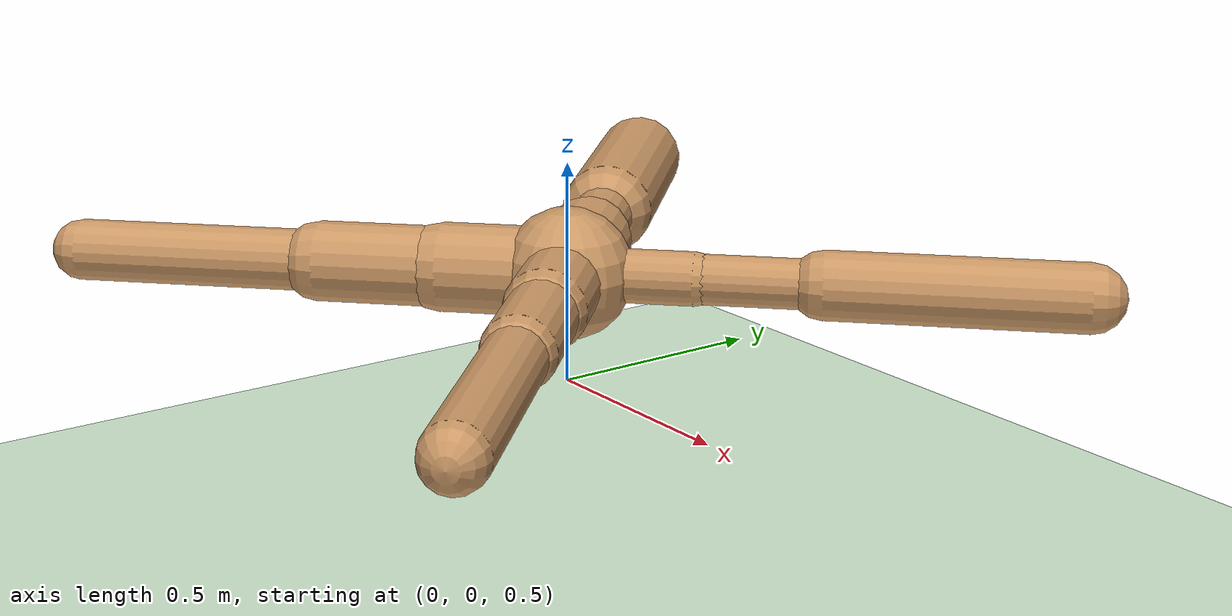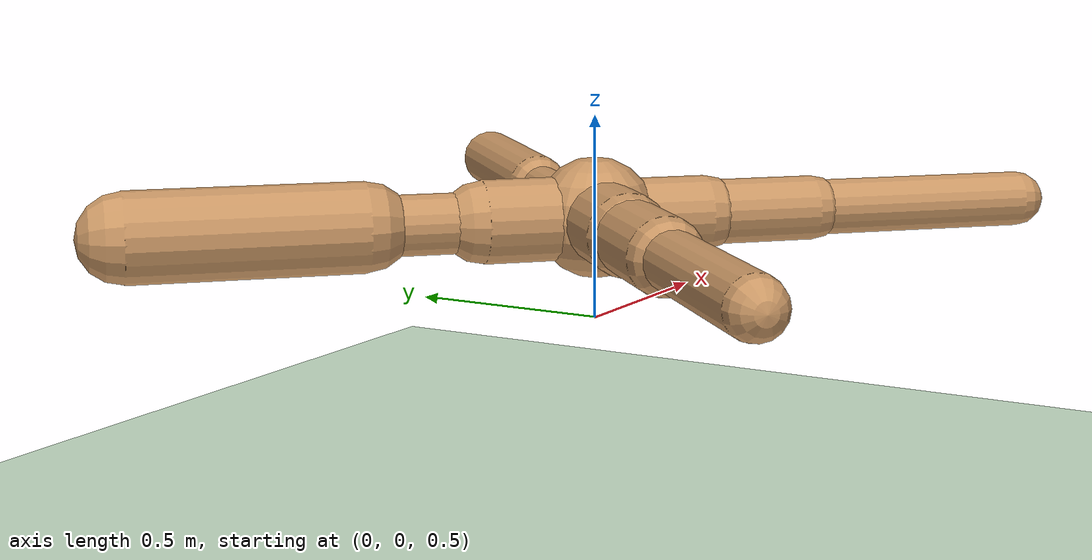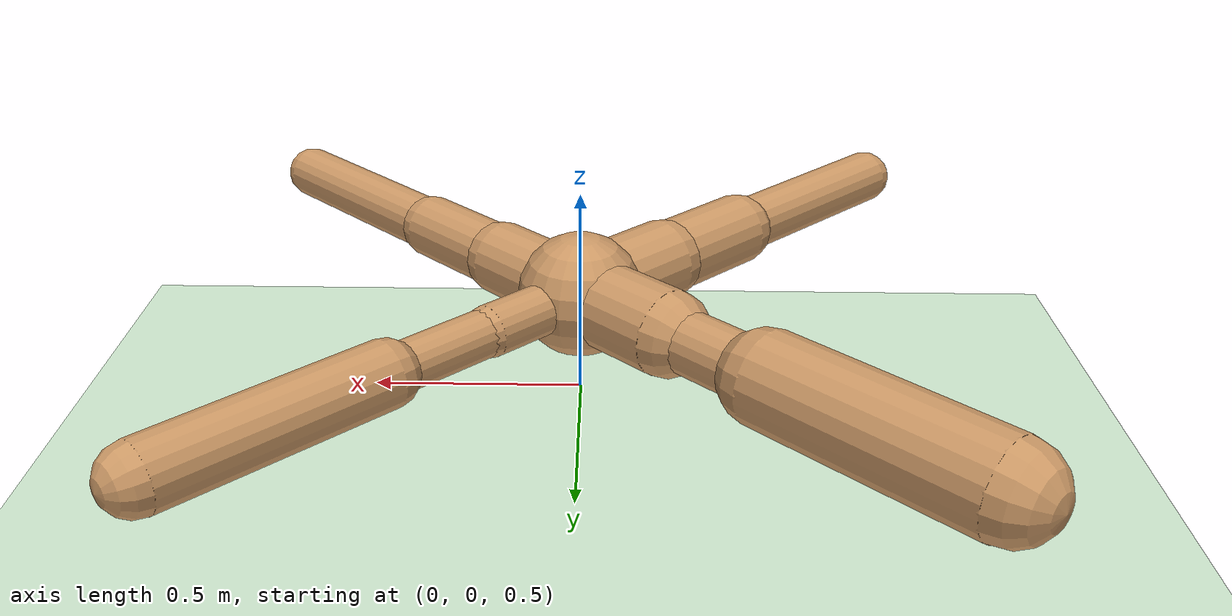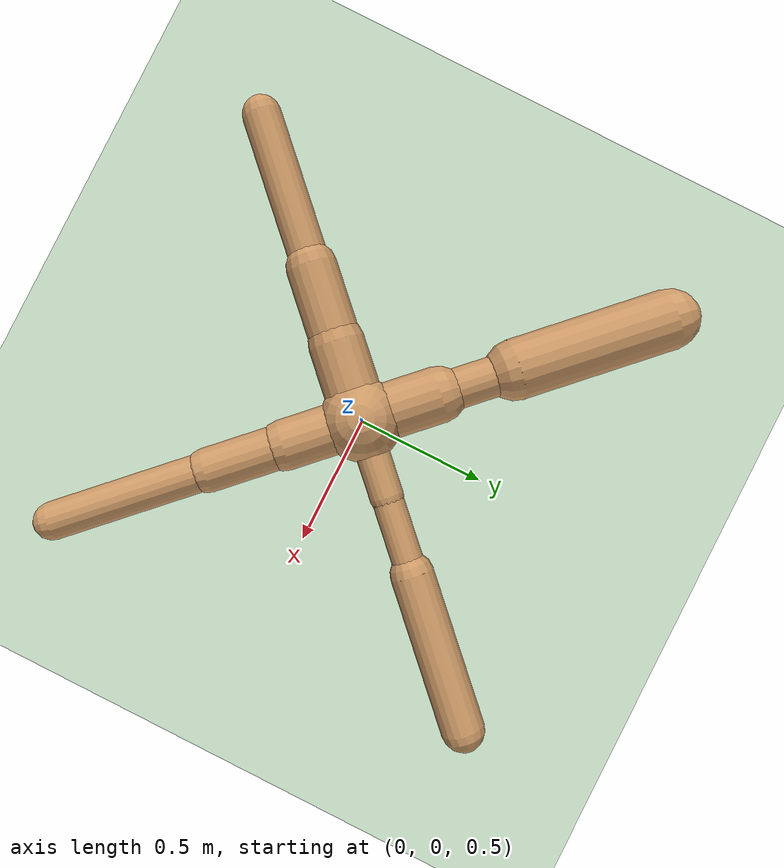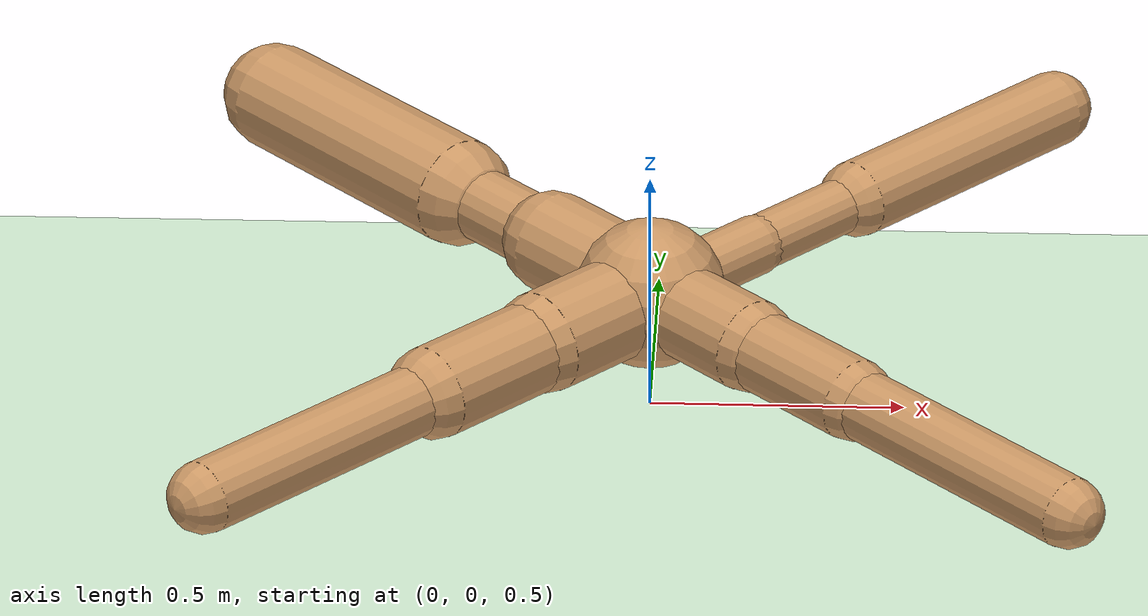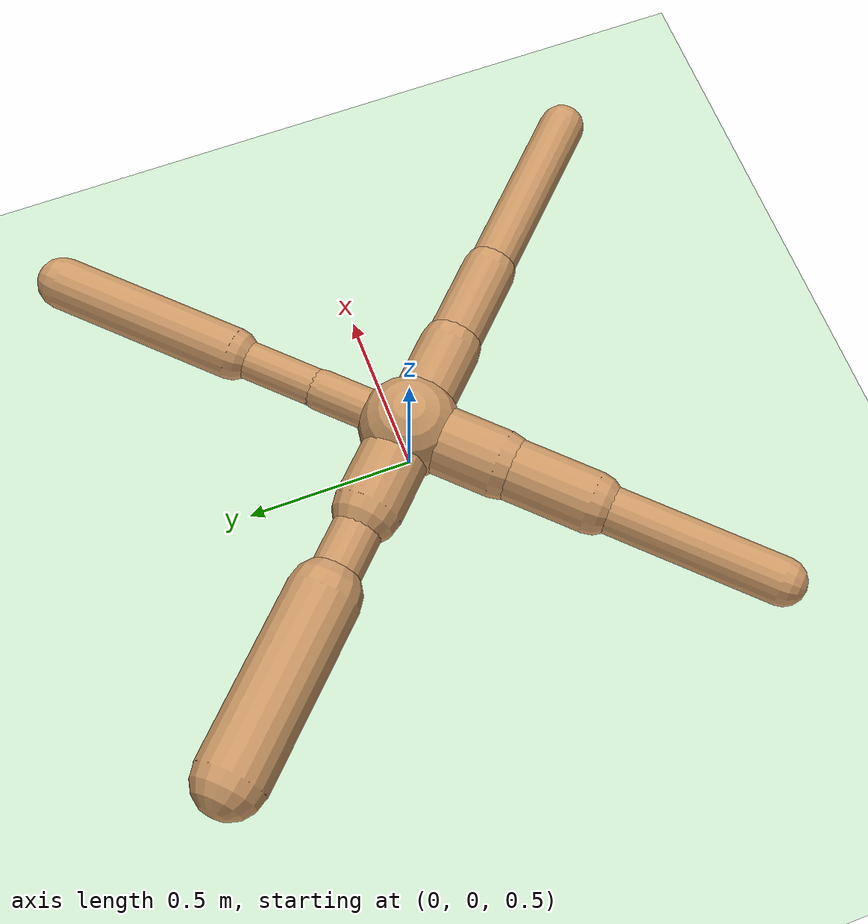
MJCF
<?xml version="1.0" encoding="utf-8"?>
<mujoco model="ant">
	<compiler angle="degree" coordinate="local" inertiafromgeom="true"></compiler>
	<option integrator="RK4" timestep="0.01"></option>
	<custom>
		<numeric data="0.0 0.0 0.55 1.0 0.0 0.0 0.0 0.0 1.0 0.0 -1.0 0.0 -1.0 0.0 1.0" name="init_qpos"></numeric>
	</custom>
	<default>
		<joint armature="1" damping="0.7395934443046565" limited="true"></joint>
		<geom conaffinity="0" condim="3" density="5.0" friction="0.8436373394348865 0.4911212647559145 0.5058260204294888" margin="0.01" rgba="0.8 0.6 0.4 1"></geom>
	</default>
	<asset>
		<texture builtin="gradient" height="100" rgb1="1 1 1" rgb2="0 0 0" type="skybox" width="100"></texture>
		<texture builtin="flat" height="1278" mark="cross" markrgb="1 1 1" name="texgeom" random="0.01" rgb1="0.8 0.6 0.4" rgb2="0.8 0.6 0.4" type="cube" width="127"></texture>
		<texture builtin="checker" height="100" name="texplane" rgb1="0 0 0" rgb2="0.8 0.8 0.8" type="2d" width="100"></texture>
		<material name="MatPlane" reflectance="0.5" shininess="1" specular="1" texrepeat="60 60" texture="texplane"></material>
		<material name="geom" texture="texgeom" texuniform="true"></material>
	</asset>
	<worldbody>
		<light cutoff="100" diffuse="1 1 1" dir="-0 0 -1.3" directional="true" exponent="1" pos="0 0 1.3" specular=".1 .1 .1"></light>
		<geom conaffinity="1" condim="3" material="MatPlane" name="floor" pos="0 0 0" rgba="0.8 0.9 0.8 1" size="52.46173721038229 39.51619399851928 34.274491399519114" type="plane"></geom>
		<body name="torso" pos="0 0 0.75">
			<camera name="track" mode="trackcom" pos="0 -3 0.3" xyaxes="1 0 0 0 0 1"></camera>
			<geom name="torso_geom" pos="0 0 0" size="0.14840938669861106" type="sphere"></geom>
			<joint armature="0" damping="0.0" limited="false" margin="0.01" name="root" pos="0 0 0" type="free"></joint>
			<body name="front_left_leg" pos="0 0 0">
				<geom fromto="0.0 0.0 0.0 0.2 0.2 0.0" name="aux_1_geom" size="0.060832968648408044" type="capsule"></geom>
				<body name="aux_1" pos="0.2 0.2 0">
					<joint axis="0 0 1" name="hip_1" pos="0.0 0.0 0.0" range="-30 30" type="hinge"></joint>
					<geom fromto="0.0 0.0 0.0 0.2 0.2 0.0" name="left_leg_geom" size="0.05661990296653862" type="capsule"></geom>
					<body pos="0.2 0.2 0">
						<joint axis="-1 1 0" name="ankle_1" pos="0.0 0.0 0.0" range="30 70" type="hinge"></joint>
						<geom fromto="0.0 0.0 0.0 0.4 0.4 0.0" name="left_ankle_geom" size="0.07789435975704591" type="capsule"></geom>
					</body>
				</body>
			</body>
			<body name="front_right_leg" pos="0 0 0">
				<geom fromto="0.0 0.0 0.0 -0.2 0.2 0.0" name="aux_2_geom" size="0.10213202993283804" type="capsule"></geom>
				<body name="aux_2" pos="-0.2 0.2 0">
					<joint axis="0 0 1" name="hip_2" pos="0.0 0.0 0.0" range="-30 30" type="hinge"></joint>
					<geom fromto="0.0 0.0 0.0 -0.2 0.2 0.0" name="right_leg_geom" size="0.0738113428789488" type="capsule"></geom>
					<body pos="-0.2 0.2 0">
						<joint axis="1 1 0" name="ankle_2" pos="0.0 0.0 0.0" range="-70 -30" type="hinge"></joint>
						<geom fromto="0.0 0.0 0.0 -0.4 0.4 0.0" name="right_ankle_geom" size="0.10997687297990696" type="capsule"></geom>
					</body>
				</body>
			</body>
			<body name="back_leg" pos="0 0 0">
				<geom fromto="0.0 0.0 0.0 -0.2 -0.2 0.0" name="aux_3_geom" size="0.10123686437249926" type="capsule"></geom>
				<body name="aux_3" pos="-0.2 -0.2 0">
					<joint axis="0 0 1" name="hip_3" pos="0.0 0.0 0.0" range="-30 30" type="hinge"></joint>
					<geom fromto="0.0 0.0 0.0 -0.2 -0.2 0.0" name="back_leg_geom" size="0.0916988147023084" type="capsule"></geom>
					<body pos="-0.2 -0.2 0">
						<joint axis="-1 1 0" name="ankle_3" pos="0.0 0.0 0.0" range="-70 -30" type="hinge"></joint>
						<geom fromto="0.0 0.0 0.0 -0.4 -0.4 0.0" name="third_ankle_geom" size="0.07035951656967128" type="capsule"></geom>
					</body>
				</body>
			</body>
			<body name="right_back_leg" pos="0 0 0">
				<geom fromto="0.0 0.0 0.0 0.2 -0.2 0.0" name="aux_4_geom" size="0.09184327964143187" type="capsule"></geom>
				<body name="aux_4" pos="0.2 -0.2 0">
					<joint axis="0 0 1" name="hip_4" pos="0.0 0.0 0.0" range="-30 30" type="hinge"></joint>
					<geom fromto="0.0 0.0 0.0 0.2 -0.2 0.0" name="rightback_leg_geom" size="0.08023206172882212" type="capsule"></geom>
					<body pos="0.2 -0.2 0">
						<joint axis="1 1 0" name="ankle_4" pos="0.0 0.0 0.0" range="30 70" type="hinge"></joint>
						<geom fromto="0.0 0.0 0.0 0.4 -0.4 0.0" name="fourth_ankle_geom" size="0.0688041352053194" type="capsule"></geom>
					</body>
				</body>
			</body>
		</body>
	</worldbody>
	<actuator>
		<motor ctrllimited="true" ctrlrange="-1.0 1.0" joint="hip_4" gear="150"></motor>
		<motor ctrllimited="true" ctrlrange="-1.0 1.0" joint="ankle_4" gear="150"></motor>
		<motor ctrllimited="true" ctrlrange="-1.0 1.0" joint="hip_1" gear="150"></motor>
		<motor ctrllimited="true" ctrlrange="-1.0 1.0" joint="ankle_1" gear="150"></motor>
		<motor ctrllimited="true" ctrlrange="-1.0 1.0" joint="hip_2" gear="150"></motor>
		<motor ctrllimited="true" ctrlrange="-1.0 1.0" joint="ankle_2" gear="150"></motor>
		<motor ctrllimited="true" ctrlrange="-1.0 1.0" joint="hip_3" gear="150"></motor>
		<motor ctrllimited="true" ctrlrange="-1.0 1.0" joint="ankle_3" gear="150"></motor>
	</actuator>
</mujoco>
